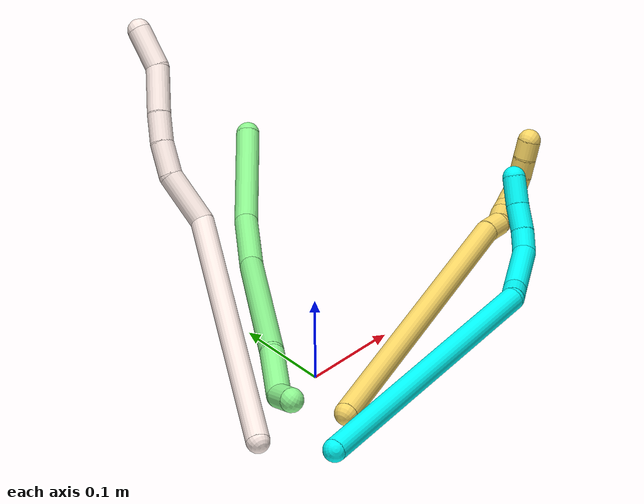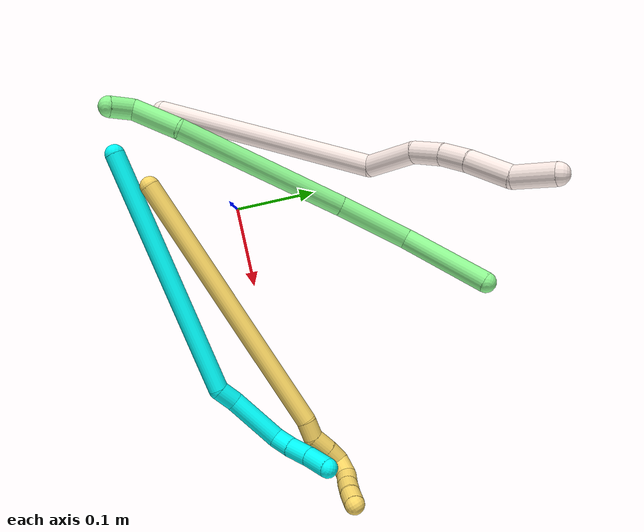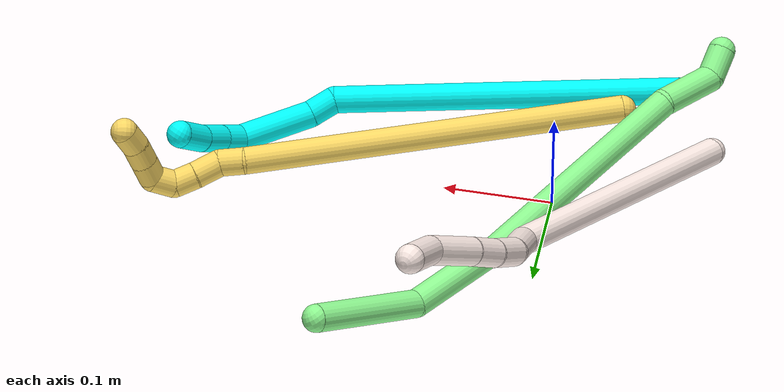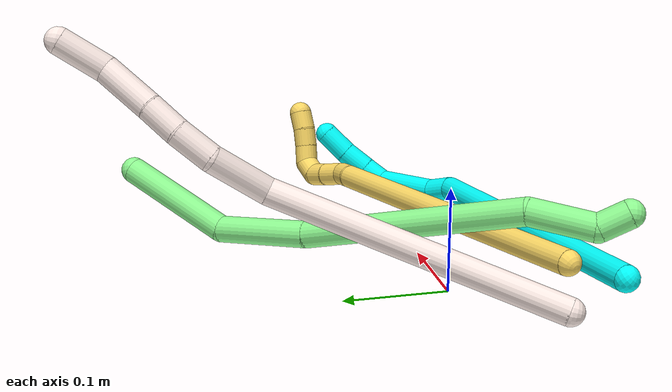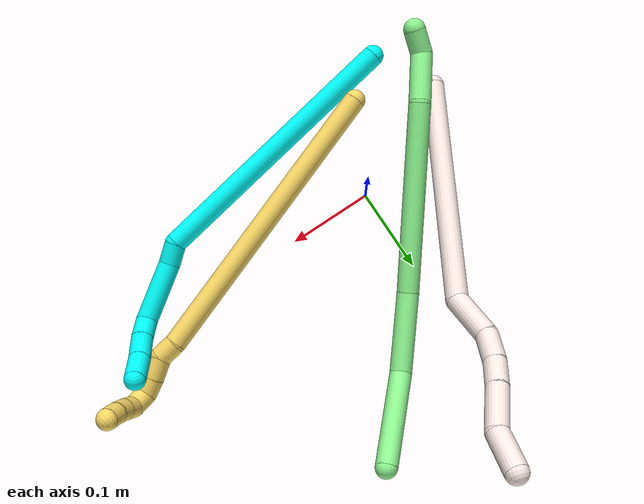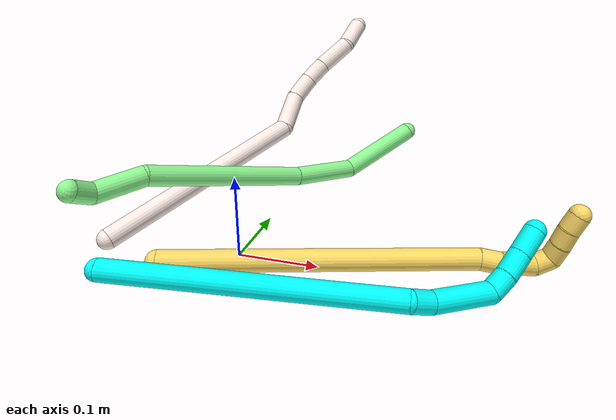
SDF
<sdf version="1.7">
 <world name="default">
  <model name="3">
   <static>0</static>
   <link name="3">
    <collision name="collision-cylinder-e_1_1_4">
     <pose>0.125137 0.047709 0.086298 -0.505022 0.903416 -0.249067</pose>
     <geometry><cylinder><radius>0.0125</radius><length>0.318639</length></cylinder></geometry>
     <surface>
      <friction><ode><mu>1.16</mu><mu2>1.16</mu2><slip1>0</slip1><slip2>0</slip2></ode></friction>
      <contact><ode><kp>1e+06</kp><kd>1</kd><max_vel>0</max_vel><min_depth>0.001</min_depth></ode></contact>
     </surface>
    </collision>
    <visual name="visual-cylinder-e_1_1_4">
     <pose>0.125137 0.047709 0.086298 -0.505022 0.903416 -0.249067</pose>
     <geometry><cylinder><radius>0.0125</radius><length>0.318639</length></cylinder></geometry>
     <material><ambient>0.003922 1 0.996078 1</ambient></material>
    </visual>
    <collision name="collision-cylinder-e_2_4_5">
     <pose>0.256716 0.095109 0.183664 0.027909 0.526931 0.007528</pose>
     <geometry><cylinder><radius>0.0125</radius><length>0.025621</length></cylinder></geometry>
     <surface>
      <friction><ode><mu>1.16</mu><mu2>1.16</mu2><slip1>0</slip1><slip2>0</slip2></ode></friction>
      <contact><ode><kp>1e+06</kp><kd>1</kd><max_vel>0</max_vel><min_depth>0.001</min_depth></ode></contact>
     </surface>
    </collision>
    <visual name="visual-cylinder-e_2_4_5">
     <pose>0.256716 0.095109 0.183664 0.027909 0.526931 0.007528</pose>
     <geometry><cylinder><radius>0.0125</radius><length>0.025621</length></cylinder></geometry>
     <material><ambient>0.003922 1 0.996078 1</ambient></material>
    </visual>
    <collision name="collision-cylinder-e_3_5_6">
     <pose>0.287658 0.091734 0.219767 0.12188 0.77089 0.049503</pose>
     <geometry><cylinder><radius>0.0125</radius><length>0.070324</length></cylinder></geometry>
     <surface>
      <friction><ode><mu>1.16</mu><mu2>1.16</mu2><slip1>0</slip1><slip2>0</slip2></ode></friction>
      <contact><ode><kp>1e+06</kp><kd>1</kd><max_vel>0</max_vel><min_depth>0.001</min_depth></ode></contact>
     </surface>
    </collision>
    <visual name="visual-cylinder-e_3_5_6">
     <pose>0.287658 0.091734 0.219767 0.12188 0.77089 0.049503</pose>
     <geometry><cylinder><radius>0.0125</radius><length>0.070324</length></cylinder></geometry>
     <material><ambient>0.003922 1 0.996078 1</ambient></material>
    </visual>
    <collision name="collision-cylinder-e_4_6_7">
     <pose>0.322432 0.08258 0.248193 1.06242 0.974793 0.603815</pose>
     <geometry><cylinder><radius>0.0125</radius><length>0.02483</length></cylinder></geometry>
     <surface>
      <friction><ode><mu>1.16</mu><mu2>1.16</mu2><slip1>0</slip1><slip2>0</slip2></ode></friction>
      <contact><ode><kp>1e+06</kp><kd>1</kd><max_vel>0</max_vel><min_depth>0.001</min_depth></ode></contact>
     </surface>
    </collision>
    <visual name="visual-cylinder-e_4_6_7">
     <pose>0.322432 0.08258 0.248193 1.06242 0.974793 0.603815</pose>
     <geometry><cylinder><radius>0.0125</radius><length>0.02483</length></cylinder></geometry>
     <material><ambient>0.003922 1 0.996078 1</ambient></material>
    </visual>
    <collision name="collision-cylinder-e_5_7_8">
     <pose>0.344057 0.067686 0.254592 1.24176 0.884051 0.652773</pose>
     <geometry><cylinder><radius>0.0125</radius><length>0.029354</length></cylinder></geometry>
     <surface>
      <friction><ode><mu>1.16</mu><mu2>1.16</mu2><slip1>0</slip1><slip2>0</slip2></ode></friction>
      <contact><ode><kp>1e+06</kp><kd>1</kd><max_vel>0</max_vel><min_depth>0.001</min_depth></ode></contact>
     </surface>
    </collision>
    <visual name="visual-cylinder-e_5_7_8">
     <pose>0.344057 0.067686 0.254592 1.24176 0.884051 0.652773</pose>
     <geometry><cylinder><radius>0.0125</radius><length>0.029354</length></cylinder></geometry>
     <material><ambient>0.003922 1 0.996078 1</ambient></material>
    </visual>
    <collision name="collision-cylinder-e_6_8_2">
     <pose>0.368102 0.04991 0.259097 1.40536 0.949218 0.820802</pose>
     <geometry><cylinder><radius>0.0125</radius><length>0.031233</length></cylinder></geometry>
     <surface>
      <friction><ode><mu>1.16</mu><mu2>1.16</mu2><slip1>0</slip1><slip2>0</slip2></ode></friction>
      <contact><ode><kp>1e+06</kp><kd>1</kd><max_vel>0</max_vel><min_depth>0.001</min_depth></ode></contact>
     </surface>
    </collision>
    <visual name="visual-cylinder-e_6_8_2">
     <pose>0.368102 0.04991 0.259097 1.40536 0.949218 0.820802</pose>
     <geometry><cylinder><radius>0.0125</radius><length>0.031233</length></cylinder></geometry>
     <material><ambient>0.003922 1 0.996078 1</ambient></material>
    </visual>
    <collision name="collision-sphere-2">
     <pose>0.380797 0.04094 0.260594 0 -0 0</pose>
     <geometry><sphere><radius>0.0125</radius></sphere></geometry>
     <surface>
      <friction><ode><mu>1.16</mu><mu2>1.16</mu2><slip1>0</slip1><slip2>0</slip2></ode></friction>
      <contact><ode><kp>1e+06</kp><kd>1</kd><max_vel>0</max_vel><min_depth>0.001</min_depth></ode></contact>
     </surface>
    </collision>
    <visual name="visual-sphere-2">
     <pose>0.380797 0.04094 0.260594 0 -0 0</pose>
     <geometry><sphere><radius>0.0125</radius></sphere></geometry>
     <material><ambient>0.003922 1 0.996078 1</ambient></material>
    </visual>
    <collision name="collision-sphere-4">
     <pose>0.250274 0.095418 0.172596 0 -0 0</pose>
     <geometry><sphere><radius>0.0125</radius></sphere></geometry>
     <surface>
      <friction><ode><mu>1.16</mu><mu2>1.16</mu2><slip1>0</slip1><slip2>0</slip2></ode></friction>
      <contact><ode><kp>1e+06</kp><kd>1</kd><max_vel>0</max_vel><min_depth>0.001</min_depth></ode></contact>
     </surface>
    </collision>
    <visual name="visual-sphere-4">
     <pose>0.250274 0.095418 0.172596 0 -0 0</pose>
     <geometry><sphere><radius>0.0125</radius></sphere></geometry>
     <material><ambient>0.003922 1 0.996078 1</ambient></material>
    </visual>
    <collision name="collision-sphere-1">
     <geometry><sphere><radius>0.0125</radius></sphere></geometry>
     <surface>
      <friction><ode><mu>1.16</mu><mu2>1.16</mu2><slip1>0</slip1><slip2>0</slip2></ode></friction>
      <contact><ode><kp>1e+06</kp><kd>1</kd><max_vel>0</max_vel><min_depth>0.001</min_depth></ode></contact>
     </surface>
    </collision>
    <visual name="visual-sphere-1">
     <geometry><sphere><radius>0.0125</radius></sphere></geometry>
     <material><ambient>0.003922 1 0.996078 1</ambient></material>
    </visual>
    <collision name="collision-sphere-8">
     <pose>0.355406 0.058879 0.257599 0 -0 0</pose>
     <geometry><sphere><radius>0.0125</radius></sphere></geometry>
     <surface>
      <friction><ode><mu>1.16</mu><mu2>1.16</mu2><slip1>0</slip1><slip2>0</slip2></ode></friction>
      <contact><ode><kp>1e+06</kp><kd>1</kd><max_vel>0</max_vel><min_depth>0.001</min_depth></ode></contact>
     </surface>
    </collision>
    <visual name="visual-sphere-8">
     <pose>0.355406 0.058879 0.257599 0 -0 0</pose>
     <geometry><sphere><radius>0.0125</radius></sphere></geometry>
     <material><ambient>0.003922 1 0.996078 1</ambient></material>
    </visual>
    <collision name="collision-sphere-5">
     <pose>0.263158 0.0948 0.194732 0 -0 0</pose>
     <geometry><sphere><radius>0.0125</radius></sphere></geometry>
     <surface>
      <friction><ode><mu>1.16</mu><mu2>1.16</mu2><slip1>0</slip1><slip2>0</slip2></ode></friction>
      <contact><ode><kp>1e+06</kp><kd>1</kd><max_vel>0</max_vel><min_depth>0.001</min_depth></ode></contact>
     </surface>
    </collision>
    <visual name="visual-sphere-5">
     <pose>0.263158 0.0948 0.194732 0 -0 0</pose>
     <geometry><sphere><radius>0.0125</radius></sphere></geometry>
     <material><ambient>0.003922 1 0.996078 1</ambient></material>
    </visual>
    <collision name="collision-sphere-6">
     <pose>0.312158 0.088667 0.244801 0 -0 0</pose>
     <geometry><sphere><radius>0.0125</radius></sphere></geometry>
     <surface>
      <friction><ode><mu>1.16</mu><mu2>1.16</mu2><slip1>0</slip1><slip2>0</slip2></ode></friction>
      <contact><ode><kp>1e+06</kp><kd>1</kd><max_vel>0</max_vel><min_depth>0.001</min_depth></ode></contact>
     </surface>
    </collision>
    <visual name="visual-sphere-6">
     <pose>0.312158 0.088667 0.244801 0 -0 0</pose>
     <geometry><sphere><radius>0.0125</radius></sphere></geometry>
     <material><ambient>0.003922 1 0.996078 1</ambient></material>
    </visual>
    <collision name="collision-sphere-7">
     <pose>0.332707 0.076492 0.251585 0 -0 0</pose>
     <geometry><sphere><radius>0.0125</radius></sphere></geometry>
     <surface>
      <friction><ode><mu>1.16</mu><mu2>1.16</mu2><slip1>0</slip1><slip2>0</slip2></ode></friction>
      <contact><ode><kp>1e+06</kp><kd>1</kd><max_vel>0</max_vel><min_depth>0.001</min_depth></ode></contact>
     </surface>
    </collision>
    <visual name="visual-sphere-7">
     <pose>0.332707 0.076492 0.251585 0 -0 0</pose>
     <geometry><sphere><radius>0.0125</radius></sphere></geometry>
     <material><ambient>0.003922 1 0.996078 1</ambient></material>
    </visual>
    <inertial>
     <pose>0.192564 0.059372 0.138773 0 -0 0</pose>
     <mass>0.5</mass>
     <inertia>
      <ixx>0.001275</ixx>
      <ixy>0</ixy>
      <ixz>0</ixz>
      <iyy>0.002186</iyy>
      <iyz>0</iyz>
      <izz>-0.002941</izz>
     </inertia>
    </inertial>
   </link>
   <pose>-0.095487 -0.129076 0.039606 -2.60307 -0.618832 0.162422</pose>
  </model>
  <model name="5">
   <static>0</static>
   <link name="5">
    <collision name="collision-cylinder-e_1_1_4">
     <pose>0.036156 0.016486 0.170264 -0.096524 0.2083 -0.010097</pose>
     <geometry><cylinder><radius>0.0125</radius><length>0.349679</length></cylinder></geometry>
     <surface>
      <friction><ode><mu>1.16</mu><mu2>1.16</mu2><slip1>0</slip1><slip2>0</slip2></ode></friction>
      <contact><ode><kp>1e+06</kp><kd>1</kd><max_vel>0</max_vel><min_depth>0.001</min_depth></ode></contact>
     </surface>
    </collision>
    <visual name="visual-cylinder-e_1_1_4">
     <pose>0.036156 0.016486 0.170264 -0.096524 0.2083 -0.010097</pose>
     <geometry><cylinder><radius>0.0125</radius><length>0.349679</length></cylinder></geometry>
     <material><ambient>1 0.858824 0.4 1</ambient></material>
    </visual>
    <collision name="collision-cylinder-e_2_4_5">
     <pose>0.076432 0.032045 0.351356 0.085384 0.362286 0.015647</pose>
     <geometry><cylinder><radius>0.0125</radius><length>0.023244</length></cylinder></geometry>
     <surface>
      <friction><ode><mu>1.16</mu><mu2>1.16</mu2><slip1>0</slip1><slip2>0</slip2></ode></friction>
      <contact><ode><kp>1e+06</kp><kd>1</kd><max_vel>0</max_vel><min_depth>0.001</min_depth></ode></contact>
     </surface>
    </collision>
    <visual name="visual-cylinder-e_2_4_5">
     <pose>0.076432 0.032045 0.351356 0.085384 0.362286 0.015647</pose>
     <geometry><cylinder><radius>0.0125</radius><length>0.023244</length></cylinder></geometry>
     <material><ambient>1 0.858824 0.4 1</ambient></material>
    </visual>
    <collision name="collision-cylinder-e_3_5_6">
     <pose>0.084717 0.035929 0.372994 -0.418708 0.338553 -0.072595</pose>
     <geometry><cylinder><radius>0.0125</radius><length>0.025089</length></cylinder></geometry>
     <surface>
      <friction><ode><mu>1.16</mu><mu2>1.16</mu2><slip1>0</slip1><slip2>0</slip2></ode></friction>
      <contact><ode><kp>1e+06</kp><kd>1</kd><max_vel>0</max_vel><min_depth>0.001</min_depth></ode></contact>
     </surface>
    </collision>
    <visual name="visual-cylinder-e_3_5_6">
     <pose>0.084717 0.035929 0.372994 -0.418708 0.338553 -0.072595</pose>
     <geometry><cylinder><radius>0.0125</radius><length>0.025089</length></cylinder></geometry>
     <material><ambient>1 0.858824 0.4 1</ambient></material>
    </visual>
    <collision name="collision-cylinder-e_4_6_7">
     <pose>0.092479 0.043798 0.393057 -0.319284 0.353479 -0.057499</pose>
     <geometry><cylinder><radius>0.0125</radius><length>0.020774</length></cylinder></geometry>
     <surface>
      <friction><ode><mu>1.16</mu><mu2>1.16</mu2><slip1>0</slip1><slip2>0</slip2></ode></friction>
      <contact><ode><kp>1e+06</kp><kd>1</kd><max_vel>0</max_vel><min_depth>0.001</min_depth></ode></contact>
     </surface>
    </collision>
    <visual name="visual-cylinder-e_4_6_7">
     <pose>0.092479 0.043798 0.393057 -0.319284 0.353479 -0.057499</pose>
     <geometry><cylinder><radius>0.0125</radius><length>0.020774</length></cylinder></geometry>
     <material><ambient>1 0.858824 0.4 1</ambient></material>
    </visual>
    <collision name="collision-cylinder-e_5_7_8">
     <pose>0.09349 0.046165 0.41251 0.067759 -0.247601 -0.008435</pose>
     <geometry><cylinder><radius>0.0125</radius><length>0.021093</length></cylinder></geometry>
     <surface>
      <friction><ode><mu>1.16</mu><mu2>1.16</mu2><slip1>0</slip1><slip2>0</slip2></ode></friction>
      <contact><ode><kp>1e+06</kp><kd>1</kd><max_vel>0</max_vel><min_depth>0.001</min_depth></ode></contact>
     </surface>
    </collision>
    <visual name="visual-cylinder-e_5_7_8">
     <pose>0.09349 0.046165 0.41251 0.067759 -0.247601 -0.008435</pose>
     <geometry><cylinder><radius>0.0125</radius><length>0.021093</length></cylinder></geometry>
     <material><ambient>1 0.858824 0.4 1</ambient></material>
    </visual>
    <collision name="collision-cylinder-e_6_8_9">
     <pose>0.082934 0.042231 0.427826 0.564884 -0.921136 -0.286004</pose>
     <geometry><cylinder><radius>0.0125</radius><length>0.020021</length></cylinder></geometry>
     <surface>
      <friction><ode><mu>1.16</mu><mu2>1.16</mu2><slip1>0</slip1><slip2>0</slip2></ode></friction>
      <contact><ode><kp>1e+06</kp><kd>1</kd><max_vel>0</max_vel><min_depth>0.001</min_depth></ode></contact>
     </surface>
    </collision>
    <visual name="visual-cylinder-e_6_8_9">
     <pose>0.082934 0.042231 0.427826 0.564884 -0.921136 -0.286004</pose>
     <geometry><cylinder><radius>0.0125</radius><length>0.020021</length></cylinder></geometry>
     <material><ambient>1 0.858824 0.4 1</ambient></material>
    </visual>
    <collision name="collision-cylinder-e_7_9_10">
     <pose>0.066635 0.036568 0.437976 0.448321 -0.979883 -0.241995</pose>
     <geometry><cylinder><radius>0.0125</radius><length>0.020056</length></cylinder></geometry>
     <surface>
      <friction><ode><mu>1.16</mu><mu2>1.16</mu2><slip1>0</slip1><slip2>0</slip2></ode></friction>
      <contact><ode><kp>1e+06</kp><kd>1</kd><max_vel>0</max_vel><min_depth>0.001</min_depth></ode></contact>
     </surface>
    </collision>
    <visual name="visual-cylinder-e_7_9_10">
     <pose>0.066635 0.036568 0.437976 0.448321 -0.979883 -0.241995</pose>
     <geometry><cylinder><radius>0.0125</radius><length>0.020056</length></cylinder></geometry>
     <material><ambient>1 0.858824 0.4 1</ambient></material>
    </visual>
    <collision name="collision-cylinder-e_8_10_2">
     <pose>0.050612 0.03233 0.449169 0.286694 -0.875471 -0.134899</pose>
     <geometry><cylinder><radius>0.0125</radius><length>0.020045</length></cylinder></geometry>
     <surface>
      <friction><ode><mu>1.16</mu><mu2>1.16</mu2><slip1>0</slip1><slip2>0</slip2></ode></friction>
      <contact><ode><kp>1e+06</kp><kd>1</kd><max_vel>0</max_vel><min_depth>0.001</min_depth></ode></contact>
     </surface>
    </collision>
    <visual name="visual-cylinder-e_8_10_2">
     <pose>0.050612 0.03233 0.449169 0.286694 -0.875471 -0.134899</pose>
     <geometry><cylinder><radius>0.0125</radius><length>0.020045</length></cylinder></geometry>
     <material><ambient>1 0.858824 0.4 1</ambient></material>
    </visual>
    <collision name="collision-sphere-2">
     <pose>0.042916 0.030515 0.455327 0 -0 0</pose>
     <geometry><sphere><radius>0.0125</radius></sphere></geometry>
     <surface>
      <friction><ode><mu>1.16</mu><mu2>1.16</mu2><slip1>0</slip1><slip2>0</slip2></ode></friction>
      <contact><ode><kp>1e+06</kp><kd>1</kd><max_vel>0</max_vel><min_depth>0.001</min_depth></ode></contact>
     </surface>
    </collision>
    <visual name="visual-sphere-2">
     <pose>0.042916 0.030515 0.455327 0 -0 0</pose>
     <geometry><sphere><radius>0.0125</radius></sphere></geometry>
     <material><ambient>1 0.858824 0.4 1</ambient></material>
    </visual>
    <collision name="collision-sphere-10">
     <pose>0.058308 0.034146 0.44301 0 -0 0</pose>
     <geometry><sphere><radius>0.0125</radius></sphere></geometry>
     <surface>
      <friction><ode><mu>1.16</mu><mu2>1.16</mu2><slip1>0</slip1><slip2>0</slip2></ode></friction>
      <contact><ode><kp>1e+06</kp><kd>1</kd><max_vel>0</max_vel><min_depth>0.001</min_depth></ode></contact>
     </surface>
    </collision>
    <visual name="visual-sphere-10">
     <pose>0.058308 0.034146 0.44301 0 -0 0</pose>
     <geometry><sphere><radius>0.0125</radius></sphere></geometry>
     <material><ambient>1 0.858824 0.4 1</ambient></material>
    </visual>
    <collision name="collision-sphere-9">
     <pose>0.074962 0.038989 0.432941 0 -0 0</pose>
     <geometry><sphere><radius>0.0125</radius></sphere></geometry>
     <surface>
      <friction><ode><mu>1.16</mu><mu2>1.16</mu2><slip1>0</slip1><slip2>0</slip2></ode></friction>
      <contact><ode><kp>1e+06</kp><kd>1</kd><max_vel>0</max_vel><min_depth>0.001</min_depth></ode></contact>
     </surface>
    </collision>
    <visual name="visual-sphere-9">
     <pose>0.074962 0.038989 0.432941 0 -0 0</pose>
     <geometry><sphere><radius>0.0125</radius></sphere></geometry>
     <material><ambient>1 0.858824 0.4 1</ambient></material>
    </visual>
    <collision name="collision-sphere-4">
     <pose>0.072313 0.032971 0.340528 0 -0 0</pose>
     <geometry><sphere><radius>0.0125</radius></sphere></geometry>
     <surface>
      <friction><ode><mu>1.16</mu><mu2>1.16</mu2><slip1>0</slip1><slip2>0</slip2></ode></friction>
      <contact><ode><kp>1e+06</kp><kd>1</kd><max_vel>0</max_vel><min_depth>0.001</min_depth></ode></contact>
     </surface>
    </collision>
    <visual name="visual-sphere-4">
     <pose>0.072313 0.032971 0.340528 0 -0 0</pose>
     <geometry><sphere><radius>0.0125</radius></sphere></geometry>
     <material><ambient>1 0.858824 0.4 1</ambient></material>
    </visual>
    <collision name="collision-sphere-1">
     <geometry><sphere><radius>0.0125</radius></sphere></geometry>
     <surface>
      <friction><ode><mu>1.16</mu><mu2>1.16</mu2><slip1>0</slip1><slip2>0</slip2></ode></friction>
      <contact><ode><kp>1e+06</kp><kd>1</kd><max_vel>0</max_vel><min_depth>0.001</min_depth></ode></contact>
     </surface>
    </collision>
    <visual name="visual-sphere-1">
     <geometry><sphere><radius>0.0125</radius></sphere></geometry>
     <material><ambient>1 0.858824 0.4 1</ambient></material>
    </visual>
    <collision name="collision-sphere-8">
     <pose>0.090905 0.045472 0.422711 0 -0 0</pose>
     <geometry><sphere><radius>0.0125</radius></sphere></geometry>
     <surface>
      <friction><ode><mu>1.16</mu><mu2>1.16</mu2><slip1>0</slip1><slip2>0</slip2></ode></friction>
      <contact><ode><kp>1e+06</kp><kd>1</kd><max_vel>0</max_vel><min_depth>0.001</min_depth></ode></contact>
     </surface>
    </collision>
    <visual name="visual-sphere-8">
     <pose>0.090905 0.045472 0.422711 0 -0 0</pose>
     <geometry><sphere><radius>0.0125</radius></sphere></geometry>
     <material><ambient>1 0.858824 0.4 1</ambient></material>
    </visual>
    <collision name="collision-sphere-5">
     <pose>0.080551 0.031118 0.362184 0 -0 0</pose>
     <geometry><sphere><radius>0.0125</radius></sphere></geometry>
     <surface>
      <friction><ode><mu>1.16</mu><mu2>1.16</mu2><slip1>0</slip1><slip2>0</slip2></ode></friction>
      <contact><ode><kp>1e+06</kp><kd>1</kd><max_vel>0</max_vel><min_depth>0.001</min_depth></ode></contact>
     </surface>
    </collision>
    <visual name="visual-sphere-5">
     <pose>0.080551 0.031118 0.362184 0 -0 0</pose>
     <geometry><sphere><radius>0.0125</radius></sphere></geometry>
     <material><ambient>1 0.858824 0.4 1</ambient></material>
    </visual>
    <collision name="collision-sphere-6">
     <pose>0.088883 0.040739 0.383804 0 -0 0</pose>
     <geometry><sphere><radius>0.0125</radius></sphere></geometry>
     <surface>
      <friction><ode><mu>1.16</mu><mu2>1.16</mu2><slip1>0</slip1><slip2>0</slip2></ode></friction>
      <contact><ode><kp>1e+06</kp><kd>1</kd><max_vel>0</max_vel><min_depth>0.001</min_depth></ode></contact>
     </surface>
    </collision>
    <visual name="visual-sphere-6">
     <pose>0.088883 0.040739 0.383804 0 -0 0</pose>
     <geometry><sphere><radius>0.0125</radius></sphere></geometry>
     <material><ambient>1 0.858824 0.4 1</ambient></material>
    </visual>
    <collision name="collision-sphere-7">
     <pose>0.096074 0.046857 0.402309 0 -0 0</pose>
     <geometry><sphere><radius>0.0125</radius></sphere></geometry>
     <surface>
      <friction><ode><mu>1.16</mu><mu2>1.16</mu2><slip1>0</slip1><slip2>0</slip2></ode></friction>
      <contact><ode><kp>1e+06</kp><kd>1</kd><max_vel>0</max_vel><min_depth>0.001</min_depth></ode></contact>
     </surface>
    </collision>
    <visual name="visual-sphere-7">
     <pose>0.096074 0.046857 0.402309 0 -0 0</pose>
     <geometry><sphere><radius>0.0125</radius></sphere></geometry>
     <material><ambient>1 0.858824 0.4 1</ambient></material>
    </visual>
    <inertial>
     <pose>0.048899 0.023043 0.240564 0 -0 0</pose>
     <mass>0.5</mass>
     <inertia>
      <ixx>0.003476</ixx>
      <ixy>0</ixy>
      <ixz>0</ixz>
      <iyy>0.003538</iyy>
      <iyz>0</iyz>
      <izz>-0.001039</izz>
     </inertia>
    </inertial>
   </link>
   <pose>-0.04766 -0.095885 0.038505 -0.822938 1.29391 -0.53275</pose>
  </model>
  <model name="11">
   <static>0</static>
   <link name="11">
    <collision name="collision-cylinder-e_1_1_4">
     <pose>-0.015451 0.028689 0.133691 -0.211382 -0.112522 0.01195</pose>
     <geometry><cylinder><radius>0.0125</radius><length>0.27521</length></cylinder></geometry>
     <surface>
      <friction><ode><mu>1.16</mu><mu2>1.16</mu2><slip1>0</slip1><slip2>0</slip2></ode></friction>
      <contact><ode><kp>1e+06</kp><kd>1</kd><max_vel>0</max_vel><min_depth>0.001</min_depth></ode></contact>
     </surface>
    </collision>
    <visual name="visual-cylinder-e_1_1_4">
     <pose>-0.015451 0.028689 0.133691 -0.211382 -0.112522 0.01195</pose>
     <geometry><cylinder><radius>0.0125</radius><length>0.27521</length></cylinder></geometry>
     <material><ambient>1 0.933333 0.909804 1</ambient></material>
    </visual>
    <collision name="collision-cylinder-e_2_4_5">
     <pose>-0.018265 0.061602 0.292975 -0.163615 0.453366 -0.037817</pose>
     <geometry><cylinder><radius>0.0125</radius><length>0.057705</length></cylinder></geometry>
     <surface>
      <friction><ode><mu>1.16</mu><mu2>1.16</mu2><slip1>0</slip1><slip2>0</slip2></ode></friction>
      <contact><ode><kp>1e+06</kp><kd>1</kd><max_vel>0</max_vel><min_depth>0.001</min_depth></ode></contact>
     </surface>
    </collision>
    <visual name="visual-cylinder-e_2_4_5">
     <pose>-0.018265 0.061602 0.292975 -0.163615 0.453366 -0.037817</pose>
     <geometry><cylinder><radius>0.0125</radius><length>0.057705</length></cylinder></geometry>
     <material><ambient>1 0.933333 0.909804 1</ambient></material>
    </visual>
    <collision name="collision-cylinder-e_3_5_6">
     <pose>-0.002238 0.072916 0.335007 -0.407111 0.18707 -0.038722</pose>
     <geometry><cylinder><radius>0.0125</radius><length>0.036444</length></cylinder></geometry>
     <surface>
      <friction><ode><mu>1.16</mu><mu2>1.16</mu2><slip1>0</slip1><slip2>0</slip2></ode></friction>
      <contact><ode><kp>1e+06</kp><kd>1</kd><max_vel>0</max_vel><min_depth>0.001</min_depth></ode></contact>
     </surface>
    </collision>
    <visual name="visual-cylinder-e_3_5_6">
     <pose>-0.002238 0.072916 0.335007 -0.407111 0.18707 -0.038722</pose>
     <geometry><cylinder><radius>0.0125</radius><length>0.036444</length></cylinder></geometry>
     <material><ambient>1 0.933333 0.909804 1</ambient></material>
    </visual>
    <collision name="collision-cylinder-e_4_6_7">
     <pose>0.002364 0.087963 0.365451 -0.516767 0.075216 -0.019888</pose>
     <geometry><cylinder><radius>0.0125</radius><length>0.032304</length></cylinder></geometry>
     <surface>
      <friction><ode><mu>1.16</mu><mu2>1.16</mu2><slip1>0</slip1><slip2>0</slip2></ode></friction>
      <contact><ode><kp>1e+06</kp><kd>1</kd><max_vel>0</max_vel><min_depth>0.001</min_depth></ode></contact>
     </surface>
    </collision>
    <visual name="visual-cylinder-e_4_6_7">
     <pose>0.002364 0.087963 0.365451 -0.516767 0.075216 -0.019888</pose>
     <geometry><cylinder><radius>0.0125</radius><length>0.032304</length></cylinder></geometry>
     <material><ambient>1 0.933333 0.909804 1</ambient></material>
    </visual>
    <collision name="collision-cylinder-e_5_7_8">
     <pose>0.002969 0.108928 0.402063 -0.522076 -0.02333 0.006233</pose>
     <geometry><cylinder><radius>0.0125</radius><length>0.052182</length></cylinder></geometry>
     <surface>
      <friction><ode><mu>1.16</mu><mu2>1.16</mu2><slip1>0</slip1><slip2>0</slip2></ode></friction>
      <contact><ode><kp>1e+06</kp><kd>1</kd><max_vel>0</max_vel><min_depth>0.001</min_depth></ode></contact>
     </surface>
    </collision>
    <visual name="visual-cylinder-e_5_7_8">
     <pose>0.002969 0.108928 0.402063 -0.522076 -0.02333 0.006233</pose>
     <geometry><cylinder><radius>0.0125</radius><length>0.052182</length></cylinder></geometry>
     <material><ambient>1 0.933333 0.909804 1</ambient></material>
    </visual>
    <collision name="collision-cylinder-e_6_8_2">
     <pose>0.008658 0.127294 0.446217 -0.243775 0.276364 -0.034067</pose>
     <geometry><cylinder><radius>0.0125</radius><length>0.046155</length></cylinder></geometry>
     <surface>
      <friction><ode><mu>1.16</mu><mu2>1.16</mu2><slip1>0</slip1><slip2>0</slip2></ode></friction>
      <contact><ode><kp>1e+06</kp><kd>1</kd><max_vel>0</max_vel><min_depth>0.001</min_depth></ode></contact>
     </surface>
    </collision>
    <visual name="visual-cylinder-e_6_8_2">
     <pose>0.008658 0.127294 0.446217 -0.243775 0.276364 -0.034067</pose>
     <geometry><cylinder><radius>0.0125</radius><length>0.046155</length></cylinder></geometry>
     <material><ambient>1 0.933333 0.909804 1</ambient></material>
    </visual>
    <collision name="collision-sphere-2">
     <pose>0.014954 0.132653 0.467762 0 -0 0</pose>
     <geometry><sphere><radius>0.0125</radius></sphere></geometry>
     <surface>
      <friction><ode><mu>1.16</mu><mu2>1.16</mu2><slip1>0</slip1><slip2>0</slip2></ode></friction>
      <contact><ode><kp>1e+06</kp><kd>1</kd><max_vel>0</max_vel><min_depth>0.001</min_depth></ode></contact>
     </surface>
    </collision>
    <visual name="visual-sphere-2">
     <pose>0.014954 0.132653 0.467762 0 -0 0</pose>
     <geometry><sphere><radius>0.0125</radius></sphere></geometry>
     <material><ambient>1 0.933333 0.909804 1</ambient></material>
    </visual>
    <collision name="collision-sphere-4">
     <pose>-0.030902 0.057377 0.267383 0 -0 0</pose>
     <geometry><sphere><radius>0.0125</radius></sphere></geometry>
     <surface>
      <friction><ode><mu>1.16</mu><mu2>1.16</mu2><slip1>0</slip1><slip2>0</slip2></ode></friction>
      <contact><ode><kp>1e+06</kp><kd>1</kd><max_vel>0</max_vel><min_depth>0.001</min_depth></ode></contact>
     </surface>
    </collision>
    <visual name="visual-sphere-4">
     <pose>-0.030902 0.057377 0.267383 0 -0 0</pose>
     <geometry><sphere><radius>0.0125</radius></sphere></geometry>
     <material><ambient>1 0.933333 0.909804 1</ambient></material>
    </visual>
    <collision name="collision-sphere-1">
     <geometry><sphere><radius>0.0125</radius></sphere></geometry>
     <surface>
      <friction><ode><mu>1.16</mu><mu2>1.16</mu2><slip1>0</slip1><slip2>0</slip2></ode></friction>
      <contact><ode><kp>1e+06</kp><kd>1</kd><max_vel>0</max_vel><min_depth>0.001</min_depth></ode></contact>
     </surface>
    </collision>
    <visual name="visual-sphere-1">
     <geometry><sphere><radius>0.0125</radius></sphere></geometry>
     <material><ambient>1 0.933333 0.909804 1</ambient></material>
    </visual>
    <collision name="collision-sphere-8">
     <pose>0.002361 0.121936 0.424672 0 -0 0</pose>
     <geometry><sphere><radius>0.0125</radius></sphere></geometry>
     <surface>
      <friction><ode><mu>1.16</mu><mu2>1.16</mu2><slip1>0</slip1><slip2>0</slip2></ode></friction>
      <contact><ode><kp>1e+06</kp><kd>1</kd><max_vel>0</max_vel><min_depth>0.001</min_depth></ode></contact>
     </surface>
    </collision>
    <visual name="visual-sphere-8">
     <pose>0.002361 0.121936 0.424672 0 -0 0</pose>
     <geometry><sphere><radius>0.0125</radius></sphere></geometry>
     <material><ambient>1 0.933333 0.909804 1</ambient></material>
    </visual>
    <collision name="collision-sphere-5">
     <pose>-0.005627 0.065827 0.318566 0 -0 0</pose>
     <geometry><sphere><radius>0.0125</radius></sphere></geometry>
     <surface>
      <friction><ode><mu>1.16</mu><mu2>1.16</mu2><slip1>0</slip1><slip2>0</slip2></ode></friction>
      <contact><ode><kp>1e+06</kp><kd>1</kd><max_vel>0</max_vel><min_depth>0.001</min_depth></ode></contact>
     </surface>
    </collision>
    <visual name="visual-sphere-5">
     <pose>-0.005627 0.065827 0.318566 0 -0 0</pose>
     <geometry><sphere><radius>0.0125</radius></sphere></geometry>
     <material><ambient>1 0.933333 0.909804 1</ambient></material>
    </visual>
    <collision name="collision-sphere-6">
     <pose>0.001151 0.080006 0.351448 0 -0 0</pose>
     <geometry><sphere><radius>0.0125</radius></sphere></geometry>
     <surface>
      <friction><ode><mu>1.16</mu><mu2>1.16</mu2><slip1>0</slip1><slip2>0</slip2></ode></friction>
      <contact><ode><kp>1e+06</kp><kd>1</kd><max_vel>0</max_vel><min_depth>0.001</min_depth></ode></contact>
     </surface>
    </collision>
    <visual name="visual-sphere-6">
     <pose>0.001151 0.080006 0.351448 0 -0 0</pose>
     <geometry><sphere><radius>0.0125</radius></sphere></geometry>
     <material><ambient>1 0.933333 0.909804 1</ambient></material>
    </visual>
    <collision name="collision-sphere-7">
     <pose>0.003578 0.095921 0.379454 0 -0 0</pose>
     <geometry><sphere><radius>0.0125</radius></sphere></geometry>
     <surface>
      <friction><ode><mu>1.16</mu><mu2>1.16</mu2><slip1>0</slip1><slip2>0</slip2></ode></friction>
      <contact><ode><kp>1e+06</kp><kd>1</kd><max_vel>0</max_vel><min_depth>0.001</min_depth></ode></contact>
     </surface>
    </collision>
    <visual name="visual-sphere-7">
     <pose>0.003578 0.095921 0.379454 0 -0 0</pose>
     <geometry><sphere><radius>0.0125</radius></sphere></geometry>
     <material><ambient>1 0.933333 0.909804 1</ambient></material>
    </visual>
    <inertial>
     <pose>-0.009514 0.057017 0.238579 0 -0 0</pose>
     <mass>0.5</mass>
     <inertia>
      <ixx>0.001807</ixx>
      <ixy>0</ixy>
      <ixz>0</ixz>
      <iyy>0.001788</iyy>
      <iyz>0</iyz>
      <izz>-0.000159</izz>
     </inertia>
    </inertial>
   </link>
   <pose>-0.135867 -0.060923 0.032816 1.30597 -0.678729 3.01011</pose>
  </model>
  <model name="13">
   <static>0</static>
   <link name="13">
    <collision name="collision-cylinder-e_1_1_4">
     <pose>0.006966 0.010711 -0.005923 -2.07589 0.517415 -0.843589</pose>
     <geometry><cylinder><radius>0.0125</radius><length>0.028167</length></cylinder></geometry>
     <surface>
      <friction><ode><mu>1.16</mu><mu2>1.16</mu2><slip1>0</slip1><slip2>0</slip2></ode></friction>
      <contact><ode><kp>1e+06</kp><kd>1</kd><max_vel>0</max_vel><min_depth>0.001</min_depth></ode></contact>
     </surface>
    </collision>
    <visual name="visual-cylinder-e_1_1_4">
     <pose>0.006966 0.010711 -0.005923 -2.07589 0.517415 -0.843589</pose>
     <geometry><cylinder><radius>0.0125</radius><length>0.028167</length></cylinder></geometry>
     <material><ambient>0.564706 0.984314 0.572549 1</ambient></material>
    </visual>
    <collision name="collision-cylinder-e_2_4_5">
     <pose>0.02836 0.046263 -0.004508 -1.2836 0.508229 -0.383445</pose>
     <geometry><cylinder><radius>0.0125</radius><length>0.059297</length></cylinder></geometry>
     <surface>
      <friction><ode><mu>1.16</mu><mu2>1.16</mu2><slip1>0</slip1><slip2>0</slip2></ode></friction>
      <contact><ode><kp>1e+06</kp><kd>1</kd><max_vel>0</max_vel><min_depth>0.001</min_depth></ode></contact>
     </surface>
    </collision>
    <visual name="visual-cylinder-e_2_4_5">
     <pose>0.02836 0.046263 -0.004508 -1.2836 0.508229 -0.383445</pose>
     <geometry><cylinder><radius>0.0125</radius><length>0.059297</length></cylinder></geometry>
     <material><ambient>0.564706 0.984314 0.572549 1</ambient></material>
    </visual>
    <collision name="collision-cylinder-e_3_5_6">
     <pose>0.113802 0.149079 -0.000223 -1.60991 0.738325 -0.765041</pose>
     <geometry><cylinder><radius>0.0125</radius><length>0.211021</length></cylinder></geometry>
     <surface>
      <friction><ode><mu>1.16</mu><mu2>1.16</mu2><slip1>0</slip1><slip2>0</slip2></ode></friction>
      <contact><ode><kp>1e+06</kp><kd>1</kd><max_vel>0</max_vel><min_depth>0.001</min_depth></ode></contact>
     </surface>
    </collision>
    <visual name="visual-cylinder-e_3_5_6">
     <pose>0.113802 0.149079 -0.000223 -1.60991 0.738325 -0.765041</pose>
     <geometry><cylinder><radius>0.0125</radius><length>0.211021</length></cylinder></geometry>
     <material><ambient>0.564706 0.984314 0.572549 1</ambient></material>
    </visual>
    <collision name="collision-cylinder-e_4_6_7">
     <pose>0.213082 0.261838 0.001651 -1.43012 0.677547 -0.59386</pose>
     <geometry><cylinder><radius>0.0125</radius><length>0.09018</length></cylinder></geometry>
     <surface>
      <friction><ode><mu>1.16</mu><mu2>1.16</mu2><slip1>0</slip1><slip2>0</slip2></ode></friction>
      <contact><ode><kp>1e+06</kp><kd>1</kd><max_vel>0</max_vel><min_depth>0.001</min_depth></ode></contact>
     </surface>
    </collision>
    <visual name="visual-cylinder-e_4_6_7">
     <pose>0.213082 0.261838 0.001651 -1.43012 0.677547 -0.59386</pose>
     <geometry><cylinder><radius>0.0125</radius><length>0.09018</length></cylinder></geometry>
     <material><ambient>0.564706 0.984314 0.572549 1</ambient></material>
    </visual>
    <collision name="collision-cylinder-e_5_7_2">
     <pose>0.261784 0.339638 0.035401 -0.980438 0.375895 -0.202307</pose>
     <geometry><cylinder><radius>0.0125</radius><length>0.111335</length></cylinder></geometry>
     <surface>
      <friction><ode><mu>1.16</mu><mu2>1.16</mu2><slip1>0</slip1><slip2>0</slip2></ode></friction>
      <contact><ode><kp>1e+06</kp><kd>1</kd><max_vel>0</max_vel><min_depth>0.001</min_depth></ode></contact>
     </surface>
    </collision>
    <visual name="visual-cylinder-e_5_7_2">
     <pose>0.261784 0.339638 0.035401 -0.980438 0.375895 -0.202307</pose>
     <geometry><cylinder><radius>0.0125</radius><length>0.111335</length></cylinder></geometry>
     <material><ambient>0.564706 0.984314 0.572549 1</ambient></material>
    </visual>
    <collision name="collision-sphere-2">
     <pose>0.28222 0.382654 0.064225 0 -0 0</pose>
     <geometry><sphere><radius>0.0125</radius></sphere></geometry>
     <surface>
      <friction><ode><mu>1.16</mu><mu2>1.16</mu2><slip1>0</slip1><slip2>0</slip2></ode></friction>
      <contact><ode><kp>1e+06</kp><kd>1</kd><max_vel>0</max_vel><min_depth>0.001</min_depth></ode></contact>
     </surface>
    </collision>
    <visual name="visual-sphere-2">
     <pose>0.28222 0.382654 0.064225 0 -0 0</pose>
     <geometry><sphere><radius>0.0125</radius></sphere></geometry>
     <material><ambient>0.564706 0.984314 0.572549 1</ambient></material>
    </visual>
    <collision name="collision-sphere-7">
     <pose>0.241348 0.296621 0.006576 0 -0 0</pose>
     <geometry><sphere><radius>0.0125</radius></sphere></geometry>
     <surface>
      <friction><ode><mu>1.16</mu><mu2>1.16</mu2><slip1>0</slip1><slip2>0</slip2></ode></friction>
      <contact><ode><kp>1e+06</kp><kd>1</kd><max_vel>0</max_vel><min_depth>0.001</min_depth></ode></contact>
     </surface>
    </collision>
    <visual name="visual-sphere-7">
     <pose>0.241348 0.296621 0.006576 0 -0 0</pose>
     <geometry><sphere><radius>0.0125</radius></sphere></geometry>
     <material><ambient>0.564706 0.984314 0.572549 1</ambient></material>
    </visual>
    <collision name="collision-sphere-6">
     <pose>0.184816 0.227055 -0.003275 0 -0 0</pose>
     <geometry><sphere><radius>0.0125</radius></sphere></geometry>
     <surface>
      <friction><ode><mu>1.16</mu><mu2>1.16</mu2><slip1>0</slip1><slip2>0</slip2></ode></friction>
      <contact><ode><kp>1e+06</kp><kd>1</kd><max_vel>0</max_vel><min_depth>0.001</min_depth></ode></contact>
     </surface>
    </collision>
    <visual name="visual-sphere-6">
     <pose>0.184816 0.227055 -0.003275 0 -0 0</pose>
     <geometry><sphere><radius>0.0125</radius></sphere></geometry>
     <material><ambient>0.564706 0.984314 0.572549 1</ambient></material>
    </visual>
    <collision name="collision-sphere-5">
     <pose>0.042788 0.071104 0.002829 0 -0 0</pose>
     <geometry><sphere><radius>0.0125</radius></sphere></geometry>
     <surface>
      <friction><ode><mu>1.16</mu><mu2>1.16</mu2><slip1>0</slip1><slip2>0</slip2></ode></friction>
      <contact><ode><kp>1e+06</kp><kd>1</kd><max_vel>0</max_vel><min_depth>0.001</min_depth></ode></contact>
     </surface>
    </collision>
    <visual name="visual-sphere-5">
     <pose>0.042788 0.071104 0.002829 0 -0 0</pose>
     <geometry><sphere><radius>0.0125</radius></sphere></geometry>
     <material><ambient>0.564706 0.984314 0.572549 1</ambient></material>
    </visual>
    <collision name="collision-sphere-1">
     <geometry><sphere><radius>0.0125</radius></sphere></geometry>
     <surface>
      <friction><ode><mu>1.16</mu><mu2>1.16</mu2><slip1>0</slip1><slip2>0</slip2></ode></friction>
      <contact><ode><kp>1e+06</kp><kd>1</kd><max_vel>0</max_vel><min_depth>0.001</min_depth></ode></contact>
     </surface>
    </collision>
    <visual name="visual-sphere-1">
     <geometry><sphere><radius>0.0125</radius></sphere></geometry>
     <material><ambient>0.564706 0.984314 0.572549 1</ambient></material>
    </visual>
    <collision name="collision-sphere-4">
     <pose>0.013932 0.021423 -0.011845 0 -0 0</pose>
     <geometry><sphere><radius>0.0125</radius></sphere></geometry>
     <surface>
      <friction><ode><mu>1.16</mu><mu2>1.16</mu2><slip1>0</slip1><slip2>0</slip2></ode></friction>
      <contact><ode><kp>1e+06</kp><kd>1</kd><max_vel>0</max_vel><min_depth>0.001</min_depth></ode></contact>
     </surface>
    </collision>
    <visual name="visual-sphere-4">
     <pose>0.013932 0.021423 -0.011845 0 -0 0</pose>
     <geometry><sphere><radius>0.0125</radius></sphere></geometry>
     <material><ambient>0.564706 0.984314 0.572549 1</ambient></material>
    </visual>
    <inertial>
     <pose>0.148508 0.19186 0.007218 0 -0 0</pose>
     <mass>0.5</mass>
     <inertia>
      <ixx>0.000148</ixx>
      <ixy>0</ixy>
      <ixz>0</ixz>
      <iyy>2.3e-05</iyy>
      <iyz>0</iyz>
      <izz>-0.001369</izz>
     </inertia>
    </inertial>
   </link>
   <pose>-0.134078 -0.108532 0.113915 0.269523 0.604909 0.09089</pose>
  </model>
 </world>
</sdf>
